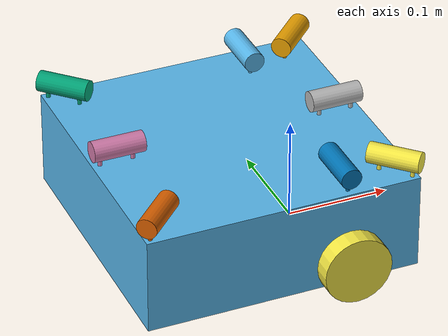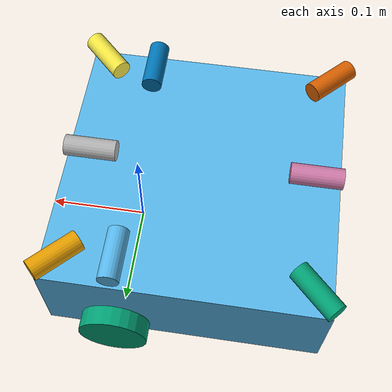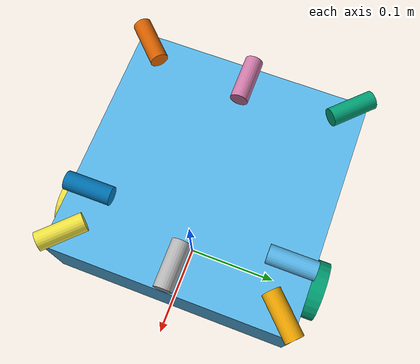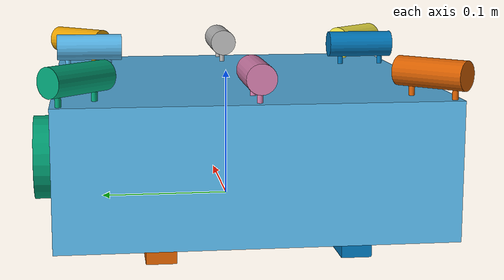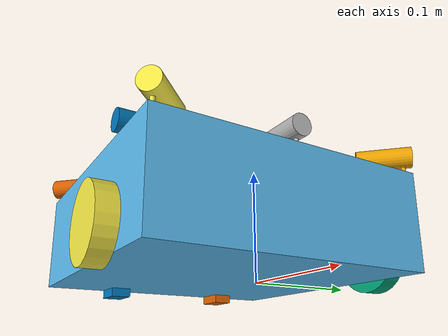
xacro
<?xml version="1.0" ?>
<robot name="turtlebot3_waffle_1d" xmlns:xacro="http://ros.org/wiki/xacro">

  <xacro:include filename="caster.xacro"/>
  <xacro:include filename="dt35.xacro"/>
  <xacro:include filename="imu.xacro"/>

  <link name="base_footprint"/>

  <joint name="base_joint" type="fixed">
    <parent link="base_footprint"/>
    <child link="base_link" />
    <origin xyz="0 0 0.010" rpy="0 0 0"/>
  </joint>

  <!-- Links and Joints -->
  <link name="base_link">
    <visual>
      <origin xyz="-0.064 0 0.047" rpy="0 0 0"/>
      <geometry>
        <box size="0.266 0.266 0.094"/>
      </geometry>
    </visual>
    <collision>
      <origin xyz="-0.064 0 0.047" rpy="0 0 0"/>
      <geometry>
        <box size="0.266 0.266 0.094"/>
      </geometry>
    </collision>
    <inertial>
      <origin xyz="0 0 0" rpy="0 0 0"/>
      <mass value="3.0"/>
      <inertia ixx="8.7002718e-03" ixy="-4.7576583e-05" ixz="1.1160499e-04"
                iyy="8.6195418e-03" iyz="-3.5422299e-06" izz="1.4612727e-02" />
    </inertial>
  </link>

  <!-- Wheel Template -->
  <xacro:macro name="wheel_link" params="name x y z">
    <joint name="${name}_joint" type="continuous">
      <parent link="base_link"/>
      <child link="${name}_link"/>
      <origin xyz="${x} ${y} ${z}" rpy="-1.57 0 0"/>
      <axis xyz="0 0 1"/>
    </joint>
    <link name="${name}_link">
      <visual>
        <origin xyz="0 0 0" rpy="0 0 0"/>
        <geometry>
          <cylinder length="0.018" radius="0.033"/>
        </geometry>
      </visual>
      <collision>
        <origin xyz="0 0 0" rpy="0 0 0"/>
        <geometry>
          <cylinder length="0.018" radius="0.033"/>
        </geometry>
      </collision>
      <inertial>
        <origin xyz="0 0 0" />
        <mass value="0.02849894" />
        <inertia ixx="1.1175580e-05" ixy="0" ixz="0"
                 iyy="1.1192413e-05" iyz="0" izz="2.0712558e-05" />
      </inertial>
    </link>
  </xacro:macro>

  <!-- Base Structure -->
  <xacro:wheel_link name="wheel_left" x="0.0" y="0.144" z="0.023" />
  <xacro:wheel_link name="wheel_right" x="0.0" y="-0.144" z="0.023" />
  <xacro:caster_macro name="caster_back_right" x="-0.177" y="-0.064" z="-0.004"/>
  <xacro:caster_macro name="caster_back_left" x="-0.177" y="0.064" z="-0.004"/>
  <xacro:imu_macro name="tb3_imu" parent="base_link" xyz="0.0 0 0.068" />

  <xacro:dt35_macro name="front_laser" parent="base_link" x="0.069" y="0" yaw="0" />
  <xacro:dt35_macro name="lf_laser" parent="base_link" x="0.069" y="0.133" yaw="45" />
  <xacro:dt35_macro name="l_laser" parent="base_link" x="0.0" y="0.133" yaw="90" />
  <xacro:dt35_macro name="lb_laser" parent="base_link" x="-0.197" y="0.133" yaw="135" />
  <xacro:dt35_macro name="rf_laser" parent="base_link" x="0.069" y="-0.133" yaw="-45" />
  <xacro:dt35_macro name="r_laser" parent="base_link" x="0.0" y="-0.133" yaw="-90" />
  <xacro:dt35_macro name="rb_laser" parent="base_link" x="-0.197" y="-0.133" yaw="-135" />
  <xacro:dt35_macro name="back_laser" parent="base_link" x="-0.197" y="0" yaw="180" />

  <gazebo>
    <plugin name="turtlebot3_diff_drive" filename="libgazebo_ros_diff_drive.so">
      <ros>
      </ros>

      <update_rate>30</update_rate>

      <!-- wheels -->
      <left_joint>wheel_left_joint</left_joint>
      <right_joint>wheel_right_joint</right_joint>

      <!-- kinematics -->
      <wheel_separation>0.287</wheel_separation>
      <wheel_diameter>0.066</wheel_diameter>

      <!-- limits -->
      <max_wheel_torque>20</max_wheel_torque>
      <max_wheel_acceleration>1.0</max_wheel_acceleration>

      <command_topic>cmd_vel</command_topic>

      <!-- output -->
      <publish_odom>true</publish_odom>
      <publish_odom_tf>false</publish_odom_tf>
      <publish_wheel_tf>false</publish_wheel_tf>

      <odometry_topic>odom</odometry_topic>
      <odometry_frame>map</odometry_frame>
      <robot_base_frame>base_footprint</robot_base_frame>

    </plugin>
  </gazebo>

  <gazebo>
    <plugin name="gazebo_ros_p3d" filename="libgazebo_ros_p3d.so">
      <ros>
        <remapping>odom:=gazebo_position</remapping>
      </ros>
      <body_name>base_footprint</body_name>
      <frame_name>map</frame_name>
      <update_rate>30</update_rate>
      <xyz_offset>0 0 0</xyz_offset>
      <rpy_offset>0 0 0</rpy_offset>
      <gaussian_noise>0.0</gaussian_noise>
    </plugin>
  </gazebo>
</robot>

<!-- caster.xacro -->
<robot xmlns:xacro="http://www.ros.org/wiki/xacro">
    <xacro:macro name="caster_macro" params="name x y z">
    <joint name="${name}_joint" type="fixed">
      <parent link="base_link"/>
      <child link="${name}_link"/>
      <origin xyz="${x} ${y} ${z}" rpy="-1.57 0 0"/>
    </joint>
    <link name="${name}_link">
      <collision>
        <origin xyz="0 0.001 0" rpy="0 0 0"/>
        <geometry>
          <box size="0.030 0.009 0.020"/>
        </geometry>
      </collision>
      <visual>
        <origin xyz="0 0.001 0" rpy="0 0 0"/>
        <geometry>
          <box size="0.030 0.009 0.020"/>
        </geometry>
      </visual>
      <inertial>
        <origin xyz="0 0 0" />
        <mass value="0.005" />
        <inertia ixx="0.001" ixy="0.0" ixz="0.0"
                 iyy="0.001" iyz="0.0" izz="0.001" />
      </inertial>
    </link>
  </xacro:macro>
</robot>

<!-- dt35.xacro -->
<robot xmlns:xacro="http://www.ros.org/wiki/xacro">
  <xacro:macro name="dt35_macro" params="name parent x y yaw">
    <joint name="${name}_joint" type="fixed">
      <parent link="${parent}"/>
      <child  link="${name}_link"/>
      <origin xyz="${x} ${y} 0.11" rpy="0 0 ${yaw * pi / 180}"/>
    </joint>
    <link name="${name}_link">
      <visual>
        <origin xyz="-0.025 0 0" rpy="0 1.57 0"/>
        <geometry>
          <cylinder radius="0.01" length="0.05" />
        </geometry>
      </visual>
      <visual> <!-- front leg -->
        <origin xyz="-0.008 0 -0.015" rpy="0 0 0"/>
        <geometry>
          <cylinder radius="0.002" length="0.02" />
        </geometry>
      </visual>
      <!-- back leg -->
      <visual>
        <origin xyz="-0.04 0 -0.015" rpy="0 0 0"/>
        <geometry>
          <cylinder radius="0.002" length="0.02" />
        </geometry>
      </visual>
      <inertial>
        <mass value="0.0" />
        <origin xyz="0 0 0" />
        <inertia ixx="0.0" ixy="0.0" ixz="0.0"
                iyy="0.0" iyz="0.0"
                izz="0.0" />
      </inertial>
    </link>

    <gazebo reference="${name}_link">
      <sensor type="ray" name="${name}">
        <visualize>true</visualize>
        <always_on>true</always_on>
        <update_rate>30</update_rate>
        <ray>
          <scan>
            <horizontal>
              <samples>1</samples>
              <resolution>1</resolution>
              <min_angle>-0.01</min_angle>
              <max_angle>0.01</max_angle>
            </horizontal>
          </scan>
          <range>
            <min>0.1</min>
            <max>30.0</max>
            <resolution>0.01</resolution>
          </range>
          <noise>
            <type>gaussian</type>
            <mean>0.0</mean>
            <stddev>0.01</stddev>
          </noise>
        </ray>
        <plugin name="${name}_plugin" filename="libgazebo_ros_ray_sensor.so">
          <ros>
            <remapping>~/out:=${name}_range</remapping>
          </ros>
          <output_type>sensor_msgs/Range</output_type>
          <frame_name>${name}_link</frame_name>
          <radiation_type>infrared</radiation_type>
        </plugin>
      </sensor>
    </gazebo>
  </xacro:macro>
</robot>

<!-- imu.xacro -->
<robot xmlns:xacro="http://www.ros.org/wiki/xacro">
  <xacro:macro name="imu_macro" params="name parent xyz">
    <joint name="${name}_joint" type="fixed">
      <parent link="${parent}"/>
      <child link="${name}_link"/>
      <origin xyz="${xyz}" rpy="0 0 0"/>
    </joint>

    <link name="${name}_link"/>

    <gazebo reference="${name}_link">
      <sensor name="${name}" type="imu">
        <always_on>true</always_on>
        <update_rate>200</update_rate>
        <imu>
          <angular_velocity>
            <x>
              <noise type="gaussian">
                <mean>0.0</mean>
                <stddev>2e-4</stddev>
              </noise>
            </x>
            <y>
              <noise type="gaussian">
                <mean>0.0</mean>
                <stddev>2e-4</stddev>
              </noise>
            </y>
            <z>
              <noise type="gaussian">
                <mean>0.0</mean>
                <stddev>2e-4</stddev>
              </noise>
            </z>
          </angular_velocity>
          <linear_acceleration>
            <x>
              <noise type="gaussian">
                <mean>0.0</mean>
                <stddev>1.7e-2</stddev>
              </noise>
            </x>
            <y>
              <noise type="gaussian">
                <mean>0.0</mean>
                <stddev>1.7e-2</stddev>
              </noise>
            </y>
            <z>
              <noise type="gaussian">
                <mean>0.0</mean>
                <stddev>1.7e-2</stddev>
              </noise>
            </z>
          </linear_acceleration>
        </imu>
        <plugin name="${name}_plugin" filename="libgazebo_ros_imu_sensor.so">
          <ros>
            <namespace>waffle_1d</namespace>
            <remapping>~/out:=imu</remapping>
          </ros>
        </plugin>
      </sensor>
    </gazebo>
  </xacro:macro>
</robot>
